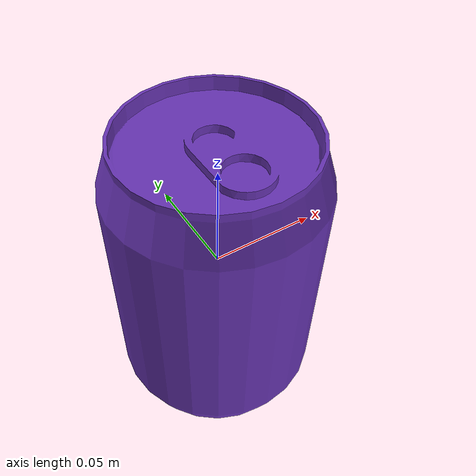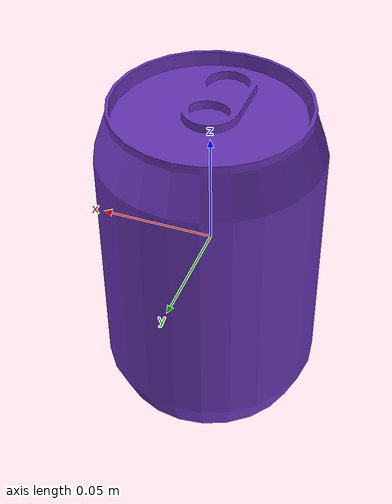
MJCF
<mujoco model="top_watertight_tiny">
  <default>
    <default group="2" type="mesh" contype="0" conaffinity="0">
      <geom group="2" type="mesh" contype="0" conaffinity="0"/>
    </default>
    <default group="3" type="mesh">
      <geom group="3" type="mesh"/>
    </default>
  </default>
  <asset>
    <mesh file="top_watertight_tiny.obj"/>
    <mesh file="top_watertight_tiny_collision_0.obj"/>
    <mesh file="top_watertight_tiny_collision_1.obj"/>
    <mesh file="top_watertight_tiny_collision_2.obj"/>
    <mesh file="top_watertight_tiny_collision_3.obj"/>
    <mesh file="top_watertight_tiny_collision_4.obj"/>
    <mesh file="top_watertight_tiny_collision_5.obj"/>
    <mesh file="top_watertight_tiny_collision_6.obj"/>
    <mesh file="top_watertight_tiny_collision_7.obj"/>
    <mesh file="top_watertight_tiny_collision_8.obj"/>
    <mesh file="top_watertight_tiny_collision_9.obj"/>
    <mesh file="top_watertight_tiny_collision_10.obj"/>
    <mesh file="top_watertight_tiny_collision_11.obj"/>
    <mesh file="top_watertight_tiny_collision_12.obj"/>
    <mesh file="top_watertight_tiny_collision_13.obj"/>
    <mesh file="top_watertight_tiny_collision_14.obj"/>
    <mesh file="top_watertight_tiny_collision_15.obj"/>
    <mesh file="top_watertight_tiny_collision_16.obj"/>
    <mesh file="top_watertight_tiny_collision_17.obj"/>
    <mesh file="top_watertight_tiny_collision_18.obj"/>
    <mesh file="top_watertight_tiny_collision_19.obj"/>
    <mesh file="top_watertight_tiny_collision_20.obj"/>
    <mesh file="top_watertight_tiny_collision_21.obj"/>
    <mesh file="top_watertight_tiny_collision_22.obj"/>
    <mesh file="top_watertight_tiny_collision_23.obj"/>
    <mesh file="top_watertight_tiny_collision_24.obj"/>
    <mesh file="top_watertight_tiny_collision_25.obj"/>
    <mesh file="top_watertight_tiny_collision_26.obj"/>
    <mesh file="top_watertight_tiny_collision_27.obj"/>
    <mesh file="top_watertight_tiny_collision_28.obj"/>
    <mesh file="top_watertight_tiny_collision_29.obj"/>
    <mesh file="top_watertight_tiny_collision_30.obj"/>
    <mesh file="top_watertight_tiny_collision_31.obj"/>
    <mesh file="top_watertight_tiny_collision_32.obj"/>
    <mesh file="top_watertight_tiny_collision_33.obj"/>
    <mesh file="top_watertight_tiny_collision_34.obj"/>
    <mesh file="top_watertight_tiny_collision_35.obj"/>
    <mesh file="top_watertight_tiny_collision_36.obj"/>
    <mesh file="top_watertight_tiny_collision_37.obj"/>
    <mesh file="top_watertight_tiny_collision_38.obj"/>
  </asset>
  <worldbody>
    <body name="top_watertight_tiny">
      <freejoint/>
      <geom mesh="top_watertight_tiny" group="2" type="mesh" rgba="0.4 0.2 0.7 1" contype="0" conaffinity="0"/>
      <geom mesh="top_watertight_tiny_collision_0" rgba="0.4449535974811558 0.6743854651968663 0.48035459247406553 1" group="3" type="mesh"/>
      <geom mesh="top_watertight_tiny_collision_1" rgba="0.5977631170113027 0.3460045115782676 0.8495769329809267 1" group="3" type="mesh"/>
      <geom mesh="top_watertight_tiny_collision_2" rgba="0.5551594569180399 0.6815822014562175 0.124824712602568 1" group="3" type="mesh"/>
      <geom mesh="top_watertight_tiny_collision_3" rgba="0.9180831339443797 0.5276115086739213 0.01860722969853057 1" group="3" type="mesh"/>
      <geom mesh="top_watertight_tiny_collision_4" rgba="0.4360622301130693 0.8207877443142756 0.0017219951656100019 1" group="3" type="mesh"/>
      <geom mesh="top_watertight_tiny_collision_5" rgba="0.5809228969256747 0.9584116259771402 0.16407312915895333 1" group="3" type="mesh"/>
      <geom mesh="top_watertight_tiny_collision_6" rgba="0.6700811881827542 0.9163501321561034 0.19645945387957942 1" group="3" type="mesh"/>
      <geom mesh="top_watertight_tiny_collision_7" rgba="0.015074870040171384 0.8443937760572942 0.42087411316583145 1" group="3" type="mesh"/>
      <geom mesh="top_watertight_tiny_collision_8" rgba="0.004680425583719061 0.03665292957628641 0.6612637875754395 1" group="3" type="mesh"/>
      <geom mesh="top_watertight_tiny_collision_9" rgba="0.09120482526492313 0.5162754765670254 0.9574662336856422 1" group="3" type="mesh"/>
      <geom mesh="top_watertight_tiny_collision_10" rgba="0.5299536741266418 0.9372719692544091 0.6666440950729506 1" group="3" type="mesh"/>
      <geom mesh="top_watertight_tiny_collision_11" rgba="0.1305664498082859 0.18988795396827685 0.31194650102971266 1" group="3" type="mesh"/>
      <geom mesh="top_watertight_tiny_collision_12" rgba="0.48759637134518263 0.18970847292706272 0.21463327018262457 1" group="3" type="mesh"/>
      <geom mesh="top_watertight_tiny_collision_13" rgba="0.2201923012295437 0.4427460779177378 0.6490419743355575 1" group="3" type="mesh"/>
      <geom mesh="top_watertight_tiny_collision_14" rgba="0.8216784157184407 0.8210653158656849 0.4321204810523276 1" group="3" type="mesh"/>
      <geom mesh="top_watertight_tiny_collision_15" rgba="0.8688874387203014 0.9317662486295456 0.541263306517352 1" group="3" type="mesh"/>
      <geom mesh="top_watertight_tiny_collision_16" rgba="0.953727171296447 0.47570710050996634 0.5483071866546091 1" group="3" type="mesh"/>
      <geom mesh="top_watertight_tiny_collision_17" rgba="0.5651344579193833 0.007371157618893953 0.7075160194576825 1" group="3" type="mesh"/>
      <geom mesh="top_watertight_tiny_collision_18" rgba="0.08768249259424665 0.6207874606125283 0.8256252208177565 1" group="3" type="mesh"/>
      <geom mesh="top_watertight_tiny_collision_19" rgba="0.6844891132667298 0.18353666834301374 0.3820275447995415 1" group="3" type="mesh"/>
      <geom mesh="top_watertight_tiny_collision_20" rgba="0.7690901809913124 0.9266428056962275 0.3601154758202738 1" group="3" type="mesh"/>
      <geom mesh="top_watertight_tiny_collision_21" rgba="0.9844813046241682 0.26351068923171383 0.2557623240084904 1" group="3" type="mesh"/>
      <geom mesh="top_watertight_tiny_collision_22" rgba="0.2123716148962047 0.7496430077019394 0.8990113362101597 1" group="3" type="mesh"/>
      <geom mesh="top_watertight_tiny_collision_23" rgba="0.16814993473331608 0.24329376491398214 0.8547638353436012 1" group="3" type="mesh"/>
      <geom mesh="top_watertight_tiny_collision_24" rgba="0.6526531923173643 0.07024633339917741 0.5531608073730392 1" group="3" type="mesh"/>
      <geom mesh="top_watertight_tiny_collision_25" rgba="0.3284145380907433 0.8104237887268959 0.35509035862361815 1" group="3" type="mesh"/>
      <geom mesh="top_watertight_tiny_collision_26" rgba="0.4177771137295372 0.19275914958144746 0.7905275903686487 1" group="3" type="mesh"/>
      <geom mesh="top_watertight_tiny_collision_27" rgba="0.12358413055848527 0.5986864471822331 0.12632885344307998 1" group="3" type="mesh"/>
      <geom mesh="top_watertight_tiny_collision_28" rgba="0.677384028135816 0.6311366225781592 0.24915538754932076 1" group="3" type="mesh"/>
      <geom mesh="top_watertight_tiny_collision_29" rgba="0.4368444266534601 0.9017331598126734 0.8722303442928366 1" group="3" type="mesh"/>
      <geom mesh="top_watertight_tiny_collision_30" rgba="0.281330039542257 0.20801472454983871 0.5525316738639201 1" group="3" type="mesh"/>
      <geom mesh="top_watertight_tiny_collision_31" rgba="0.583401432173312 0.680414776295128 0.910222461510695 1" group="3" type="mesh"/>
      <geom mesh="top_watertight_tiny_collision_32" rgba="0.1576803268898146 0.29117673011783884 0.23192803407145512 1" group="3" type="mesh"/>
      <geom mesh="top_watertight_tiny_collision_33" rgba="0.7078228054709709 0.8699309569778619 0.024918621111918005 1" group="3" type="mesh"/>
      <geom mesh="top_watertight_tiny_collision_34" rgba="0.4605126431963328 0.37018775163635287 0.7725534831200338 1" group="3" type="mesh"/>
      <geom mesh="top_watertight_tiny_collision_35" rgba="0.6771234137113271 0.7027173280232214 0.8986333097001695 1" group="3" type="mesh"/>
      <geom mesh="top_watertight_tiny_collision_36" rgba="0.6255197039127968 0.507993433761733 0.24725118771081522 1" group="3" type="mesh"/>
      <geom mesh="top_watertight_tiny_collision_37" rgba="0.22048751867251715 0.7453186352114212 0.32144088263357007 1" group="3" type="mesh"/>
      <geom mesh="top_watertight_tiny_collision_38" rgba="0.10819952897311358 0.28544183278947577 0.9451749085690104 1" group="3" type="mesh"/>
    </body>
  </worldbody>
</mujoco>
